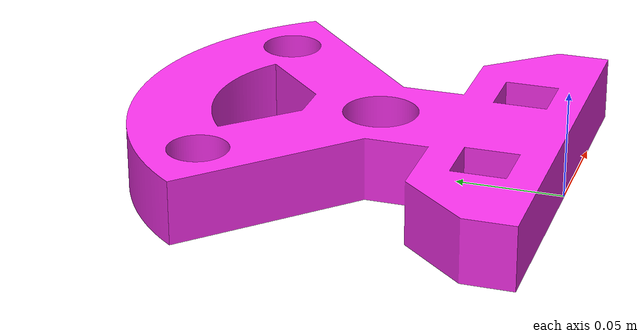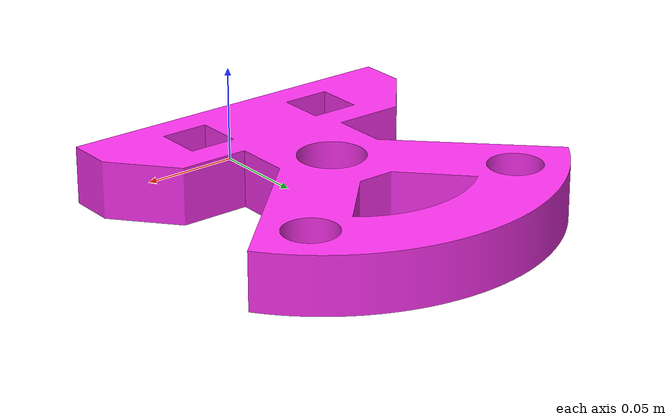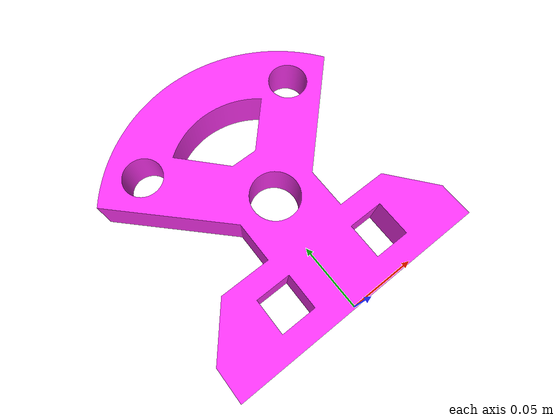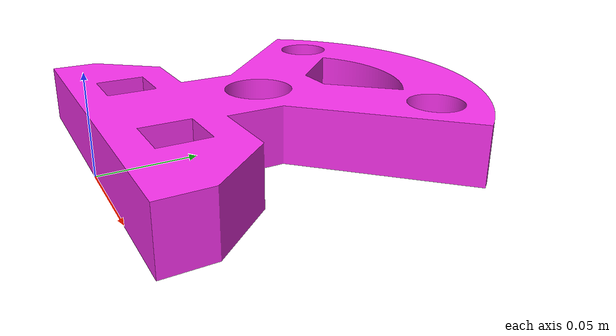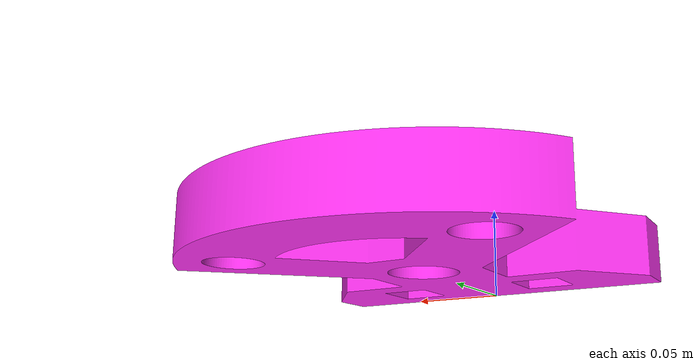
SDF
<?xml version='1.0'?>
<sdf version='1.6'>
  <model name='cran_field_front_face_plate'>
    <link name='link_12'>
      <pose frame=''>-0.00025 -0.00015 2.1e-05 0 -0 0</pose>
<inertial>
          <pose frame=''>-0.00025 0.1 0.017 0 -0 0</pose>
          <mass>0.5</mass>
          <inertia>
            <ixx>0.04089999519</ixx>
            <ixy>0</ixy>
            <ixz>-0</ixz>
            <iyy>0.0385267521072129</iyy>
            <iyz>0</iyz>
            <izz>0.07762674737907</izz>
          </inertia>
        </inertial>
          <visual name='visual'>
        <geometry>
          <mesh>
            <uri>model://cranfield_front_face_plate/cran_feld_front_face_plate.stl</uri>
            <scale>0.001 0.001 0.001</scale>
          </mesh>
        </geometry>
        <material>
          <ambient>1 0.2 0.95 1</ambient>
          <diffuse>1 0.2 0.95 1</diffuse>
          <specular>0.01 0.01 0.01 1</specular>
          <emissive>0 0 0 1</emissive>
          <shader type='vertex'>
            <normal_map>__default__</normal_map>
          </shader>
        </material>
        <cast_shadows>1</cast_shadows>
        <transparency>0</transparency>
      </visual>
      <collision name='collision'>
        <laser_retro>0</laser_retro>
        <max_contacts>10</max_contacts>
        <pose frame=''>0 0 0 0 -0 0</pose>
        <geometry>
          <mesh>
            <uri>model://cranfield_front_face_plate/cran_feld_front_face_plate.stl</uri>
            <scale>0.001 0.001 0.001</scale>
          </mesh>
        </geometry>

<surface>
          <friction>
            <ode>
              <mu>1e15</mu>
              <mu2>1e15</mu2>
            </ode>
          </friction>
          <contact>
            <ode>
              <kp>1e15</kp>
              <kd>1e15</kd>
              <min_depth>0</min_depth>
              <max_vel>10</max_vel>
            </ode>
          </contact>
        </surface>
       </collision>
    </link>

    <static>0</static>
    <allow_auto_disable>1</allow_auto_disable>
  </model>
</sdf>
